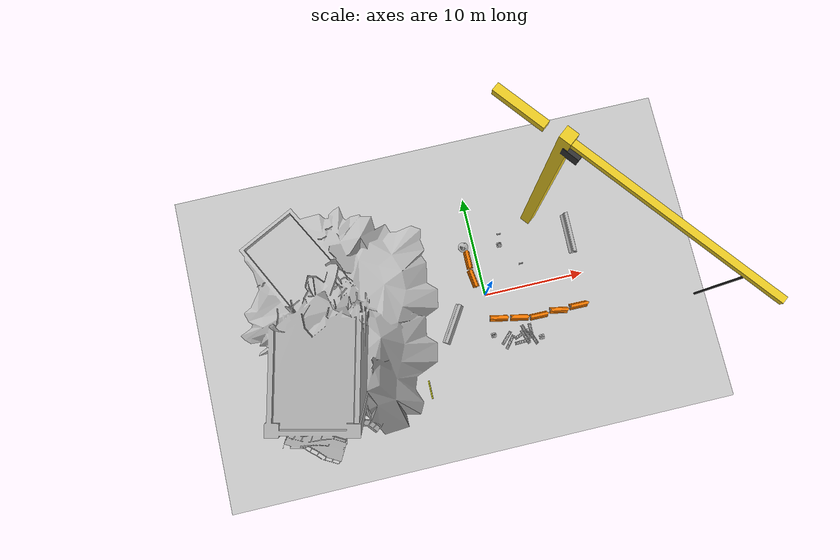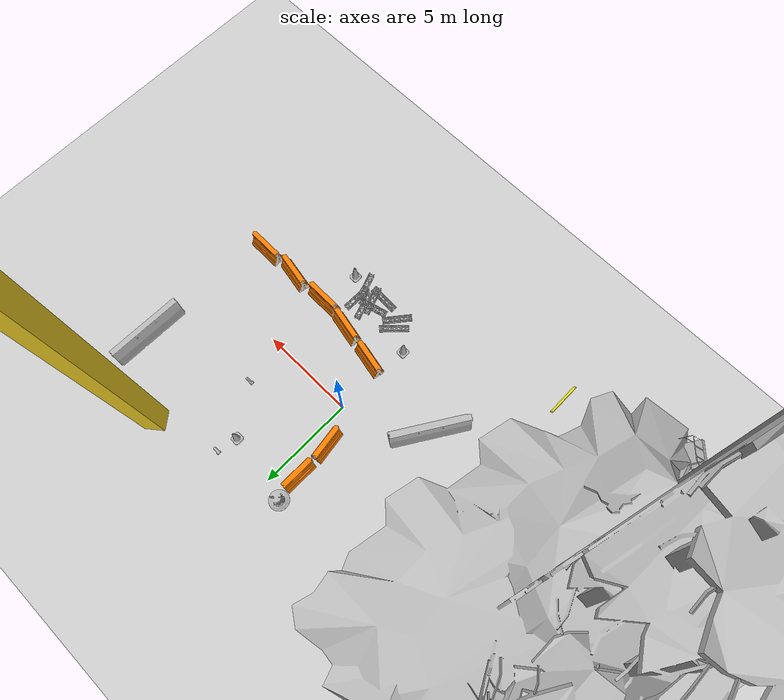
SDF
<sdf version="1.7">
 <world name="default">
  <light name="sun" type="directional">
   <pose>0 0 10 0 -0 0</pose>
   <diffuse>0.8 0.8 0.8 1</diffuse>
   <specular>0.1 0.1 0.1 1</specular>
   <attenuation>
    <range>1000</range>
    <constant>0.9</constant>
    <linear>0.01</linear>
    <quadratic>0.001</quadratic>
   </attenuation>
   <direction>-0.5 0.5 -1</direction>
   <spot><inner_angle>0</inner_angle><outer_angle>0</outer_angle><falloff>0</falloff></spot>
  </light>
  <model name="ground_plane">
   <static>1</static>
   <link name="link">
    <collision name="collision">
     <geometry><plane><normal>0 0 1</normal><size>100 100</size></plane></geometry>
     <surface><friction><ode><mu>100</mu><mu2>50</mu2></ode></friction></surface>
    </collision>
    <visual name="visual">
     <cast_shadows>0</cast_shadows>
     <geometry><plane><normal>0 0 1</normal><size>100 100</size></plane></geometry>
     <material>
      <script><uri>file://media/materials/scripts/gazebo.material</uri><name>Gazebo/Grey</name></script>
     </material>
    </visual>
   </link>
  </model>
  <gravity>0 0 -9.8</gravity>
  <magnetic_field>6e-06 2.3e-05 -4.2e-05</magnetic_field>
  <atmosphere type="adiabatic"/>
  <physics name="default_physics" default="0" type="ode">
   <max_step_size>0.001</max_step_size>
   <real_time_factor>1</real_time_factor>
   <real_time_update_rate>1000</real_time_update_rate>
  </physics>
  <scene><ambient>0.4 0.4 0.4 1</ambient><background>0.7 0.7 0.7 1</background><shadows>1</shadows></scene>
  <spherical_coordinates>
   <surface_model>EARTH_WGS84</surface_model>
   <latitude_deg>0</latitude_deg>
   <longitude_deg>0</longitude_deg>
   <elevation>0</elevation>
   <heading_deg>0</heading_deg>
  </spherical_coordinates>
  <model name="collapsed_industrial">
   <static>1</static>
   <link name="link">
    <collision name="collision">
     <geometry><mesh><uri>model://collapsed_industrial/meshes/collapsed_industrial.dae</uri></mesh></geometry>
    </collision>
    <visual name="visual">
     <geometry><mesh><uri>model://collapsed_industrial/meshes/collapsed_industrial.dae</uri></mesh></geometry>
    </visual>
   </link>
   <pose>-14.0067 -0.103419 0 0 -0 1.33365</pose>
  </model>
  <model name="tower_crane">
   <static>1</static>
   <link name="link">
    <collision name="collision">
     <geometry><mesh><uri>model://tower_crane/meshes/tower_crane.dae</uri></mesh></geometry>
    </collision>
    <visual name="visual">
     <geometry><mesh><uri>model://tower_crane/meshes/tower_crane.dae</uri></mesh></geometry>
    </visual>
   </link>
   <pose>6.03726 6.79238 0 0 0 -0.898155</pose>
  </model>
  <model name="Construction Barrel">
   <link name="link">
    <inertial>
     <pose>0 0 0.4 0 -0 0</pose>
     <mass>500</mass>
     <inertia><ixx>51.2096</ixx><iyy>51.2096</iyy><izz>25</izz><ixy>0</ixy><ixz>0</ixz><iyz>0</iyz></inertia>
    </inertial>
    <collision name="collision">
     <geometry><mesh><uri>model://construction_barrel/meshes/construction_barrel.dae</uri></mesh></geometry>
    </collision>
    <visual name="visual">
     <geometry><mesh><uri>model://construction_barrel/meshes/construction_barrel.dae</uri></mesh></geometry>
    </visual>
   </link>
   <pose>-1.05597 5.25059 0 1e-06 -0 0.858321</pose>
  </model>
  <model name="drc_practice_yellow_parking_block">
   <static>1</static>
   <link name="link">
    <visual name="visual">
     <geometry><mesh><uri>model://drc_practice_yellow_parking_block/meshes/block.dae</uri></mesh></geometry>
    </visual>
    <collision name="collision">
     <geometry><mesh><uri>model://drc_practice_yellow_parking_block/meshes/block.dae</uri></mesh></geometry>
    </collision>
   </link>
   <pose>-7.46948 -7.91567 0 0 -0 0</pose>
  </model>
  <model name="drc_practice_organge_jersey_barrier">
   <static>1</static>
   <link name="link">
    <visual name="visual">
     <geometry>
      <mesh><uri>model://drc_practice_orange_jersey_barrier/meshes/jersey_barrier.dae</uri></mesh>
     </geometry>
    </visual>
    <collision name="collision">
     <geometry>
      <mesh><uri>model://drc_practice_orange_jersey_barrier/meshes/jersey_barrier.dae</uri></mesh>
     </geometry>
    </collision>
   </link>
   <pose>-0.887228 3.80913 0 0 -0 0</pose>
  </model>
  <model name="drc_practice_organge_jersey_barrier_clone">
   <static>1</static>
   <link name="link">
    <visual name="visual">
     <geometry>
      <mesh><uri>model://drc_practice_orange_jersey_barrier/meshes/jersey_barrier.dae</uri></mesh>
     </geometry>
    </visual>
    <collision name="collision">
     <geometry>
      <mesh><uri>model://drc_practice_orange_jersey_barrier/meshes/jersey_barrier.dae</uri></mesh>
     </geometry>
    </collision>
   </link>
   <pose>-0.831854 1.85615 0.074298 0 -0 0.148039</pose>
  </model>
  <model name="drc_practice_organge_jersey_barrier_clone_clone_clone">
   <static>1</static>
   <link name="link">
    <visual name="visual">
     <geometry>
      <mesh><uri>model://drc_practice_orange_jersey_barrier/meshes/jersey_barrier.dae</uri></mesh>
     </geometry>
    </visual>
    <collision name="collision">
     <geometry>
      <mesh><uri>model://drc_practice_orange_jersey_barrier/meshes/jersey_barrier.dae</uri></mesh>
     </geometry>
    </collision>
   </link>
   <pose>0.730668 -2.58497 0 0 -0 1.36537</pose>
  </model>
  <model name="drc_practice_organge_jersey_barrier_clone_clone_clone_clone">
   <static>1</static>
   <link name="link">
    <visual name="visual">
     <geometry>
      <mesh><uri>model://drc_practice_orange_jersey_barrier/meshes/jersey_barrier.dae</uri></mesh>
     </geometry>
    </visual>
    <collision name="collision">
     <geometry>
      <mesh><uri>model://drc_practice_orange_jersey_barrier/meshes/jersey_barrier.dae</uri></mesh>
     </geometry>
    </collision>
   </link>
   <pose>2.74419 -2.98704 0 0 -0 1.36537</pose>
  </model>
  <model name="drc_practice_organge_jersey_barrier_clone_clone_clone_clone_0">
   <static>1</static>
   <link name="link">
    <visual name="visual">
     <geometry>
      <mesh><uri>model://drc_practice_orange_jersey_barrier/meshes/jersey_barrier.dae</uri></mesh>
     </geometry>
    </visual>
    <collision name="collision">
     <geometry>
      <mesh><uri>model://drc_practice_orange_jersey_barrier/meshes/jersey_barrier.dae</uri></mesh>
     </geometry>
    </collision>
   </link>
   <pose>4.65125 -3.23691 0 0 -0 1.56758</pose>
  </model>
  <model name="drc_practice_organge_jersey_barrier_clone_clone_clone_clone_0_clone">
   <static>1</static>
   <link name="link">
    <visual name="visual">
     <geometry>
      <mesh><uri>model://drc_practice_orange_jersey_barrier/meshes/jersey_barrier.dae</uri></mesh>
     </geometry>
    </visual>
    <collision name="collision">
     <geometry>
      <mesh><uri>model://drc_practice_orange_jersey_barrier/meshes/jersey_barrier.dae</uri></mesh>
     </geometry>
    </collision>
   </link>
   <pose>6.73423 -3.15665 0 0 -0 1.3882</pose>
  </model>
  <model name="drc_practice_organge_jersey_barrier_clone_clone_clone_clone_0_clone_0">
   <static>1</static>
   <link name="link">
    <visual name="visual">
     <geometry>
      <mesh><uri>model://drc_practice_orange_jersey_barrier/meshes/jersey_barrier.dae</uri></mesh>
     </geometry>
    </visual>
    <collision name="collision">
     <geometry>
      <mesh><uri>model://drc_practice_orange_jersey_barrier/meshes/jersey_barrier.dae</uri></mesh>
     </geometry>
    </collision>
   </link>
   <pose>8.77452 -3.12573 0 0 -0 1.56758</pose>
  </model>
  <model name="jersey_barrier_clone">
   <static>1</static>
   <link name="link">
    <visual name="visual">
     <geometry><mesh><uri>model://jersey_barrier/meshes/jersey_barrier.dae</uri></mesh></geometry>
    </visual>
    <collision name="upright">
     <pose>0 0 0.5715 0 -0 0</pose>
     <geometry><box><size>4.06542 0.3063 1.143</size></box></geometry>
    </collision>
    <collision name="base">
     <pose>0 0 0.032258 0 -0 0</pose>
     <geometry><box><size>4.06542 0.8107 0.064516</size></box></geometry>
    </collision>
    <collision name="base2">
     <pose>0 0 0.1 0 -0 0</pose>
     <geometry><box><size>4.06542 0.65 0.1</size></box></geometry>
    </collision>
    <collision name="base3">
     <pose>0 0 0.2 0 -0 0</pose>
     <geometry><box><size>4.06542 0.5 0.1</size></box></geometry>
    </collision>
    <collision name="left-angle">
     <pose>0 -0.224 0.2401 0.9 -0 0</pose>
     <geometry><box><size>4.06542 0.5 0.064516</size></box></geometry>
    </collision>
    <collision name="right-angle">
     <pose>0 0.224 0.2401 -0.9 0 0</pose>
     <geometry><box><size>4.06542 0.5 0.064516</size></box></geometry>
    </collision>
   </link>
   <pose>9.70602 4.18121 0 0 -0 1.55298</pose>
  </model>
  <model name="standpipe">
   <static>1</static>
   <link name="standpipe">
    <pose>0 0 0.1 0 1.57078 0</pose>
    <collision name="collision_stopper">
     <pose>0 0 0.22 0 -0 0</pose>
     <geometry><cylinder><radius>0.069</radius><length>0.1</length></cylinder></geometry>
     <surface><friction><ode><mu>0.5</mu><mu2>0.5</mu2></ode></friction></surface>
    </collision>
    <collision name="collision">
     <pose>0 0 0.15 0 -0 0</pose>
     <geometry><mesh><uri>model://standpipe/meshes/standpipe.dae</uri></mesh></geometry>
     <surface><friction><ode><mu>0.5</mu><mu2>0.5</mu2></ode></friction></surface>
    </collision>
    <visual name="visual">
     <pose>0 0 0.15 0 -0 0</pose>
     <geometry><mesh><uri>model://standpipe/meshes/standpipe.dae</uri></mesh></geometry>
    </visual>
   </link>
   <pose>3.91415 2.30422 0 0 -0 0</pose>
  </model>
  <model name="standpipe_clone">
   <static>1</static>
   <link name="standpipe">
    <pose>0 0 0.1 0 1.57078 0</pose>
    <collision name="collision_stopper">
     <pose>0 0 0.22 0 -0 0</pose>
     <geometry><cylinder><radius>0.069</radius><length>0.1</length></cylinder></geometry>
     <surface><friction><ode><mu>0.5</mu><mu2>0.5</mu2></ode></friction></surface>
    </collision>
    <collision name="collision">
     <pose>0 0 0.15 0 -0 0</pose>
     <geometry><mesh><uri>model://standpipe/meshes/standpipe.dae</uri></mesh></geometry>
     <surface><friction><ode><mu>0.5</mu><mu2>0.5</mu2></ode></friction></surface>
    </collision>
    <visual name="visual">
     <pose>0 0 0.15 0 -0 0</pose>
     <geometry><mesh><uri>model://standpipe/meshes/standpipe.dae</uri></mesh></geometry>
    </visual>
   </link>
   <pose>2.44659 5.74462 0 0 -0 0</pose>
  </model>
  <model name="jersey_barrier_0">
   <static>1</static>
   <link name="link">
    <visual name="visual">
     <geometry><mesh><uri>model://jersey_barrier/meshes/jersey_barrier.dae</uri></mesh></geometry>
    </visual>
    <collision name="upright">
     <pose>0 0 0.5715 0 -0 0</pose>
     <geometry><box><size>4.06542 0.3063 1.143</size></box></geometry>
    </collision>
    <collision name="base">
     <pose>0 0 0.032258 0 -0 0</pose>
     <geometry><box><size>4.06542 0.8107 0.064516</size></box></geometry>
    </collision>
    <collision name="base2">
     <pose>0 0 0.1 0 -0 0</pose>
     <geometry><box><size>4.06542 0.65 0.1</size></box></geometry>
    </collision>
    <collision name="base3">
     <pose>0 0 0.2 0 -0 0</pose>
     <geometry><box><size>4.06542 0.5 0.1</size></box></geometry>
    </collision>
    <collision name="left-angle">
     <pose>0 -0.224 0.2401 0.9 -0 0</pose>
     <geometry><box><size>4.06542 0.5 0.064516</size></box></geometry>
    </collision>
    <collision name="right-angle">
     <pose>0 0.224 0.2401 -0.9 0 0</pose>
     <geometry><box><size>4.06542 0.5 0.064516</size></box></geometry>
    </collision>
   </link>
   <pose>-3.83767 -2.1374 0 0 -0 1.00568</pose>
  </model>
  <model name="truss">
   <link name="link">
    <inertial>
     <mass>20.7307</mass>
     <inertia>
      <ixx>4.7978</ixx>
      <ixy>0</ixy>
      <ixz>0</ixz>
      <iyy>0.4699</iyy>
      <iyz>-0.002</iyz>
      <izz>4.7978</izz>
     </inertia>
    </inertial>
    <collision name="collision">
     <geometry><mesh><uri>model://drc_practice_truss/meshes/truss.dae</uri></mesh></geometry>
     <surface>
      <bounce><restitution_coefficient>0</restitution_coefficient><threshold>100000</threshold></bounce>
      <friction><ode><mu>10</mu><mu2>10</mu2></ode></friction>
     </surface>
    </collision>
    <visual name="visual">
     <geometry><mesh><uri>model://drc_practice_truss/meshes/truss.dae</uri></mesh></geometry>
    </visual>
   </link>
   <pose>3.55769 -4.53918 0.143304 0 1e-05 -0.007431</pose>
  </model>
  <model name="truss_clone">
   <link name="link">
    <inertial>
     <mass>20.7307</mass>
     <inertia>
      <ixx>4.7978</ixx>
      <ixy>0</ixy>
      <ixz>0</ixz>
      <iyy>0.4699</iyy>
      <iyz>-0.002</iyz>
      <izz>4.7978</izz>
     </inertia>
    </inertial>
    <collision name="collision">
     <geometry><mesh><uri>model://drc_practice_truss/meshes/truss.dae</uri></mesh></geometry>
     <surface>
      <bounce><restitution_coefficient>0</restitution_coefficient><threshold>100000</threshold></bounce>
      <friction><ode><mu>10</mu><mu2>10</mu2></ode></friction>
     </surface>
    </collision>
    <visual name="visual">
     <geometry><mesh><uri>model://drc_practice_truss/meshes/truss.dae</uri></mesh></geometry>
    </visual>
   </link>
   <pose>3.02559 -4.47496 0.147263 -3.14158 -2e-05 -2.81429</pose>
  </model>
  <model name="truss_clone_0">
   <link name="link">
    <inertial>
     <mass>20.7307</mass>
     <inertia>
      <ixx>4.7978</ixx>
      <ixy>0</ixy>
      <ixz>0</ixz>
      <iyy>0.4699</iyy>
      <iyz>-0.002</iyz>
      <izz>4.7978</izz>
     </inertia>
    </inertial>
    <collision name="collision">
     <geometry><mesh><uri>model://drc_practice_truss/meshes/truss.dae</uri></mesh></geometry>
     <surface>
      <bounce><restitution_coefficient>0</restitution_coefficient><threshold>100000</threshold></bounce>
      <friction><ode><mu>10</mu><mu2>10</mu2></ode></friction>
     </surface>
    </collision>
    <visual name="visual">
     <geometry><mesh><uri>model://drc_practice_truss/meshes/truss.dae</uri></mesh></geometry>
    </visual>
   </link>
   <pose>3.59529 -5.19923 0.429513 -1.69108 1.47529 1.80976</pose>
  </model>
  <model name="truss_clone_1">
   <link name="link">
    <inertial>
     <mass>20.7307</mass>
     <inertia>
      <ixx>4.7978</ixx>
      <ixy>0</ixy>
      <ixz>0</ixz>
      <iyy>0.4699</iyy>
      <iyz>-0.002</iyz>
      <izz>4.7978</izz>
     </inertia>
    </inertial>
    <collision name="collision">
     <geometry><mesh><uri>model://drc_practice_truss/meshes/truss.dae</uri></mesh></geometry>
     <surface>
      <bounce><restitution_coefficient>0</restitution_coefficient><threshold>100000</threshold></bounce>
      <friction><ode><mu>10</mu><mu2>10</mu2></ode></friction>
     </surface>
    </collision>
    <visual name="visual">
     <geometry><mesh><uri>model://drc_practice_truss/meshes/truss.dae</uri></mesh></geometry>
    </visual>
   </link>
   <pose>2.88204 -4.98836 0.147994 -2.45055 1.57079 -2.1053</pose>
  </model>
  <model name="truss_clone_2">
   <link name="link">
    <inertial>
     <mass>20.7307</mass>
     <inertia>
      <ixx>4.7978</ixx>
      <ixy>0</ixy>
      <ixz>0</ixz>
      <iyy>0.4699</iyy>
      <iyz>-0.002</iyz>
      <izz>4.7978</izz>
     </inertia>
    </inertial>
    <collision name="collision">
     <geometry><mesh><uri>model://drc_practice_truss/meshes/truss.dae</uri></mesh></geometry>
     <surface>
      <bounce><restitution_coefficient>0</restitution_coefficient><threshold>100000</threshold></bounce>
      <friction><ode><mu>10</mu><mu2>10</mu2></ode></friction>
     </surface>
    </collision>
    <visual name="visual">
     <geometry><mesh><uri>model://drc_practice_truss/meshes/truss.dae</uri></mesh></geometry>
    </visual>
   </link>
   <pose>2.53417 -4.67234 0.411384 -1.59658 1.20818 0.345259</pose>
  </model>
  <model name="truss_clone_2_clone">
   <link name="link">
    <inertial>
     <mass>20.7307</mass>
     <inertia>
      <ixx>4.7978</ixx>
      <ixy>0</ixy>
      <ixz>0</ixz>
      <iyy>0.4699</iyy>
      <iyz>-0.002</iyz>
      <izz>4.7978</izz>
     </inertia>
    </inertial>
    <collision name="collision">
     <geometry><mesh><uri>model://drc_practice_truss/meshes/truss.dae</uri></mesh></geometry>
     <surface>
      <bounce><restitution_coefficient>0</restitution_coefficient><threshold>100000</threshold></bounce>
      <friction><ode><mu>10</mu><mu2>10</mu2></ode></friction>
     </surface>
    </collision>
    <visual name="visual">
     <geometry><mesh><uri>model://drc_practice_truss/meshes/truss.dae</uri></mesh></geometry>
    </visual>
   </link>
   <pose>2.48886 -5.39115 0.335482 -0.248142 -0.079149 1.61356</pose>
  </model>
  <model name="truss_clone_2_clone_clone">
   <link name="link">
    <inertial>
     <mass>20.7307</mass>
     <inertia>
      <ixx>4.7978</ixx>
      <ixy>0</ixy>
      <ixz>0</ixz>
      <iyy>0.4699</iyy>
      <iyz>-0.002</iyz>
      <izz>4.7978</izz>
     </inertia>
    </inertial>
    <collision name="collision">
     <geometry><mesh><uri>model://drc_practice_truss/meshes/truss.dae</uri></mesh></geometry>
     <surface>
      <bounce><restitution_coefficient>0</restitution_coefficient><threshold>100000</threshold></bounce>
      <friction><ode><mu>10</mu><mu2>10</mu2></ode></friction>
     </surface>
    </collision>
    <visual name="visual">
     <geometry><mesh><uri>model://drc_practice_truss/meshes/truss.dae</uri></mesh></geometry>
    </visual>
   </link>
   <pose>1.0415 -4.681 0.143305 0 -0 2.36129</pose>
  </model>
  <model name="truss_clone_2_clone_clone_0">
   <link name="link">
    <inertial>
     <mass>20.7307</mass>
     <inertia>
      <ixx>4.7978</ixx>
      <ixy>0</ixy>
      <ixz>0</ixz>
      <iyy>0.4699</iyy>
      <iyz>-0.002</iyz>
      <izz>4.7978</izz>
     </inertia>
    </inertial>
    <collision name="collision">
     <geometry><mesh><uri>model://drc_practice_truss/meshes/truss.dae</uri></mesh></geometry>
     <surface>
      <bounce><restitution_coefficient>0</restitution_coefficient><threshold>100000</threshold></bounce>
      <friction><ode><mu>10</mu><mu2>10</mu2></ode></friction>
     </surface>
    </collision>
    <visual name="visual">
     <geometry><mesh><uri>model://drc_practice_truss/meshes/truss.dae</uri></mesh></geometry>
    </visual>
   </link>
   <pose>1.28442 -5.14582 0.147994 3.14156 1.57079 -0.675733</pose>
  </model>
  <model name="Construction Cone_clone_clone_clone">
   <link name="link">
    <collision name="collision">
     <geometry>
      <mesh><scale>10 10 10</scale><uri>model://construction_cone/meshes/construction_cone.dae</uri></mesh>
     </geometry>
    </collision>
    <visual name="visual">
     <geometry>
      <mesh><scale>10 10 10</scale><uri>model://construction_cone/meshes/construction_cone.dae</uri></mesh>
     </geometry>
    </visual>
    <inertial>
     <inertia><ixx>1</ixx><ixy>0</ixy><ixz>0</ixz><iyy>1</iyy><iyz>0</iyz><izz>1</izz></inertia>
     <mass>1</mass>
    </inertial>
   </link>
   <pose>-0.135956 -4.11164 -0 0 -0 0</pose>
  </model>
  <model name="standpipe_clone_0">
   <static>1</static>
   <link name="standpipe">
    <pose>0 0 0.1 0 1.57078 0</pose>
    <collision name="collision_stopper">
     <pose>0 0 0.22 0 -0 0</pose>
     <geometry><cylinder><radius>0.069</radius><length>0.1</length></cylinder></geometry>
     <surface><friction><ode><mu>0.5</mu><mu2>0.5</mu2></ode></friction></surface>
    </collision>
    <collision name="collision">
     <pose>0 0 0.15 0 -0 0</pose>
     <geometry><mesh><uri>model://standpipe/meshes/standpipe.dae</uri></mesh></geometry>
     <surface><friction><ode><mu>0.5</mu><mu2>0.5</mu2></ode></friction></surface>
    </collision>
    <visual name="visual">
     <pose>0 0 0.15 0 -0 0</pose>
     <geometry><mesh><uri>model://standpipe/meshes/standpipe.dae</uri></mesh></geometry>
    </visual>
   </link>
   <pose>3.87778 2.30096 0 0 -0 0</pose>
  </model>
  <model name="Construction Cone_clone_clone_clone_clone">
   <link name="link">
    <collision name="collision">
     <geometry>
      <mesh><scale>10 10 10</scale><uri>model://construction_cone/meshes/construction_cone.dae</uri></mesh>
     </geometry>
    </collision>
    <visual name="visual">
     <geometry>
      <mesh><scale>10 10 10</scale><uri>model://construction_cone/meshes/construction_cone.dae</uri></mesh>
     </geometry>
    </visual>
    <inertial>
     <inertia><ixx>1</ixx><ixy>0</ixy><ixz>0</ixz><iyy>1</iyy><iyz>0</iyz><izz>1</izz></inertia>
     <mass>1</mass>
    </inertial>
   </link>
   <pose>4.49108 -5.34208 -0 0 -1e-06 0</pose>
  </model>
  <model name="Construction Cone">
   <link name="link">
    <collision name="collision">
     <geometry>
      <mesh><scale>10 10 10</scale><uri>model://construction_cone/meshes/construction_cone.dae</uri></mesh>
     </geometry>
    </collision>
    <visual name="visual">
     <geometry>
      <mesh><scale>10 10 10</scale><uri>model://construction_cone/meshes/construction_cone.dae</uri></mesh>
     </geometry>
    </visual>
    <inertial>
     <inertia><ixx>1</ixx><ixy>0</ixy><ixz>0</ixz><iyy>1</iyy><iyz>0</iyz><izz>1</izz></inertia>
     <mass>1</mass>
    </inertial>
   </link>
   <pose>2.54262 4.66686 -0 -0 -0 -0</pose>
  </model>
  <light name="user_directional_light_0" type="directional">
   <pose>19.3173 -1.81412 1 0 -0 0</pose>
   <diffuse>0.5 0.5 0.5 1</diffuse>
   <specular>0.1 0.1 0.1 1</specular>
   <direction>0.1 0.1 -0.9</direction>
   <attenuation>
    <range>20</range>
    <constant>0.5</constant>
    <linear>0.01</linear>
    <quadratic>0.001</quadratic>
   </attenuation>
  </light>
 </world>
</sdf>
